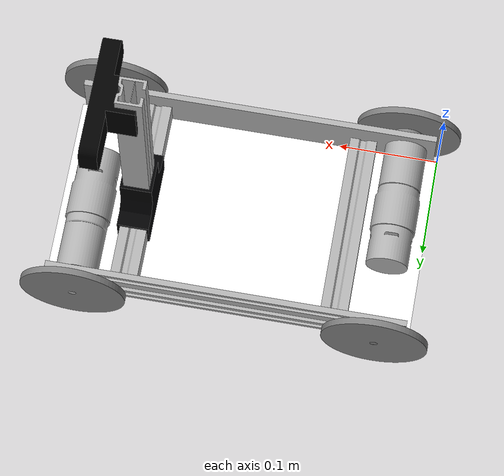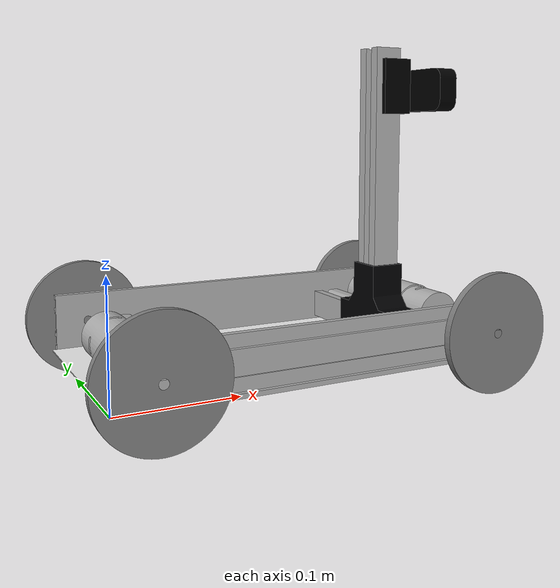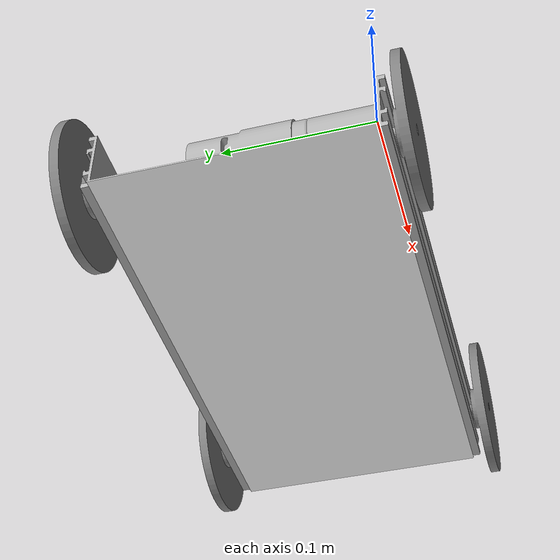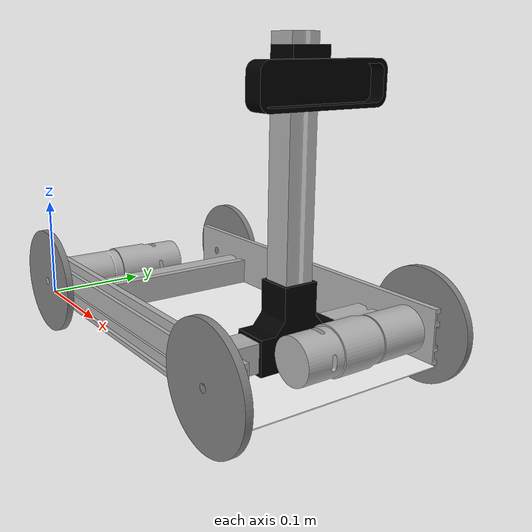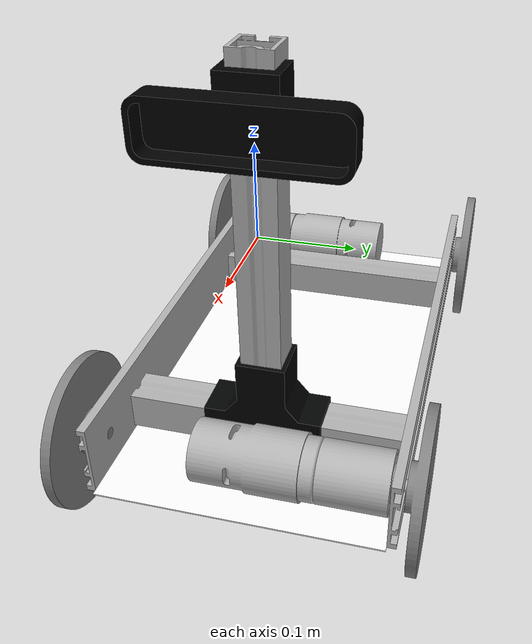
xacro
<?xml version="1.0" ?>
<robot name="ugv_chasis_simply" xmlns:xacro="http://www.ros.org/wiki/xacro">

<xacro:include filename="$(find ugv_chasis_simply_description)/urdf/materials.xacro" />
<xacro:include filename="$(find ugv_chasis_simply_description)/urdf/ugv_chasis_simply.trans" />
<xacro:include filename="$(find ugv_chasis_simply_description)/urdf/ugv_chasis_simply.gazebo" />

<xacro:property name="h" value="0.0" />

<link name="base_link">
  <inertial>
    <origin xyz="0.183 0.0955 0.0005" rpy="0 0 0"/>
    <mass value="0.54037338"/>
    <inertia ixx="0.001643" iyy="0.006032" izz="0.007675" ixy="-0.0" iyz="0.0" ixz="-0.0"/>
  </inertial>
  <visual>
    <origin xyz="0 0 ${h}" rpy="0 0 0"/>
    <geometry>
      <mesh filename="package://ugv_chasis_simply_description/meshes/base_link.stl" scale="0.001 0.001 0.001"/>
    </geometry>
    <material name="base_color"/>
  </visual>
  <collision>
    <origin xyz="0 0 ${h}" rpy="0 0 0"/>
    <geometry>
      <mesh filename="package://ugv_chasis_simply_description/meshes/base_link.stl" scale="0.001 0.001 0.001"/>
    </geometry>
  </collision>
</link>

<link name="aluminum_section_2_1_1">
  <inertial>
    <origin xyz="-0.18274999999999997 -0.002209463183999669 0.02517559613634509" rpy="0 0 0"/>
    <mass value="0.15936247278945964"/>
    <inertia ixx="4.2e-05" iyy="0.001742" izz="0.001701" ixy="0.0" iyz="-0.0" ixz="0.0"/>
  </inertial>
  <visual>
    <origin xyz="-0.366 -0.0 ${h}" rpy="0 0 0"/>
    <geometry>
      <mesh filename="package://ugv_chasis_simply_description/meshes/aluminum_section_2_1_1.stl" scale="0.001 0.001 0.001"/>
    </geometry>
    <material name="silver"/>
  </visual>
  <collision>
    <origin xyz="-0.366 -0.0 ${h}" rpy="0 0 0"/>
    <geometry>
      <mesh filename="package://ugv_chasis_simply_description/meshes/aluminum_section_2_1_1.stl" scale="0.001 0.001 0.001"/>
    </geometry>
  </collision>
</link>

<link name="aluminum_section_2_2_1">
  <inertial>
    <origin xyz="-0.18274999999999997 0.002209463184005056 0.02517559613634509" rpy="0 0 0"/>
    <mass value="0.15936247278945964"/>
    <inertia ixx="4.2e-05" iyy="0.001742" izz="0.001701" ixy="0.0" iyz="0.0" ixz="-0.0"/>
  </inertial>
  <visual>
    <origin xyz="-0.366 -0.191 ${h}" rpy="0 0 0"/>
    <geometry>
      <mesh filename="package://ugv_chasis_simply_description/meshes/aluminum_section_2_2_1.stl" scale="0.001 0.001 0.001"/>
    </geometry>
    <material name="silver"/>
  </visual>
  <collision>
    <origin xyz="-0.366 -0.191 ${h}" rpy="0 0 0"/>
    <geometry>
      <mesh filename="package://ugv_chasis_simply_description/meshes/aluminum_section_2_2_1.stl" scale="0.001 0.001 0.001"/>
    </geometry>
  </collision>
</link>

<link name="short_aluminum_section_1_1_1">
  <inertial>
    <origin xyz="0.0764761996477037 -7.216449660063518e-16 0.01368904867970494" rpy="0 0 0"/>
    <mass value="0.1312466780255859"/>
    <inertia ixx="0.000409" iyy="2.3e-05" izz="0.000412" ixy="-0.0" iyz="0.0" ixz="-0.0"/>
  </inertial>
  <visual>
    <origin xyz="-0.0 -0.0955 ${h-0.001}" rpy="0 0 0"/>
    <geometry>
      <mesh filename="package://ugv_chasis_simply_description/meshes/short_aluminum_section_1_1_1.stl" scale="0.001 0.001 0.001"/>
    </geometry>
    <material name="silver"/>
  </visual>
  <collision>
    <origin xyz="-0.0 -0.0955 ${h-0.001}" rpy="0 0 0"/>
    <geometry>
      <mesh filename="package://ugv_chasis_simply_description/meshes/short_aluminum_section_1_1_1.stl" scale="0.001 0.001 0.001"/>
    </geometry>
  </collision>
</link>

<link name="camera_base_support_1">
  <inertial>
    <origin xyz="-0.07899999999999996 -2.7755575615628914e-17 0.02874832008249895" rpy="0 0 0"/>
    <mass value="0.35396827499999983"/>
    <inertia ixx="0.00029" iyy="0.000194" izz="0.000194" ixy="0.0" iyz="0.0" ixz="-0.0"/>
  </inertial>
  <visual>
    <origin xyz="-0.366 -0.0955 ${h-0.001}" rpy="0 0 0"/>
    <geometry>
      <mesh filename="package://ugv_chasis_simply_description/meshes/camera_base_support_1.stl" scale="0.001 0.001 0.001"/>
    </geometry>
    <material name="camera_base_color"/>
  </visual>
  <collision>
    <origin xyz="-0.366 -0.0955 ${h-0.001}" rpy="0 0 0"/>
    <geometry>
      <mesh filename="package://ugv_chasis_simply_description/meshes/camera_base_support_1.stl" scale="0.001 0.001 0.001"/>
    </geometry>
  </collision>
</link>

<link name="short_aluminum_section_1_2_1">
  <inertial>
    <origin xyz="-0.013523800352296167 2.3592239273284576e-16 0.013689048679704965" rpy="0 0 0"/>
    <mass value="0.1312466780255859"/>
    <inertia ixx="0.000409" iyy="2.3e-05" izz="0.000412" ixy="-0.0" iyz="0.0" ixz="0.0"/>
  </inertial>
  <visual>
    <origin xyz="-0.3 -0.0955 ${h-0.004}" rpy="0 0 0"/>
    <geometry>
      <mesh filename="package://ugv_chasis_simply_description/meshes/short_aluminum_section_1_2_1.stl" scale="0.001 0.001 0.001"/>
    </geometry>
    <material name="silver"/>
  </visual>
  <collision>
    <origin xyz="-0.3 -0.0955 ${h-0.004}" rpy="0 0 0"/>
    <geometry>
      <mesh filename="package://ugv_chasis_simply_description/meshes/short_aluminum_section_1_2_1.stl" scale="0.001 0.001 0.001"/>
    </geometry>
  </collision>
</link>

<link name="aluminum_section_1_1">
  <inertial>
    <origin xyz="0.013689048679703442 -0.01352380035229618 0.12000000000000033" rpy="0 0 0"/>
    <mass value="0.1649172917598984"/>
    <inertia ixx="0.000808" iyy="0.000805" izz="2.9e-05" ixy="0.0" iyz="0.0" ixz="0.0"/>
  </inertial>
  <visual>
    <origin xyz="-0.274 -0.109 ${h-0.03325}" rpy="0 0 0"/>
    <geometry>
      <mesh filename="package://ugv_chasis_simply_description/meshes/aluminum_section_1_1.stl" scale="0.001 0.001 0.001"/>
    </geometry>
    <material name="silver"/>
  </visual>
  <collision>
    <origin xyz="-0.274 -0.109 ${h-0.03325}" rpy="0 0 0"/>
    <geometry>
      <mesh filename="package://ugv_chasis_simply_description/meshes/aluminum_section_1_1.stl" scale="0.001 0.001 0.001"/>
    </geometry>
  </collision>
</link>

<link name="camera_base_1">
  <inertial>
    <origin xyz="-0.23998580179449036 -0.09559200000000008 0.2627440506049653" rpy="0 0 0"/>
    <mass value="0.09052999054354093"/>
    <inertia ixx="9.8e-05" iyy="2.6e-05" izz="9e-05" ixy="0.0" iyz="0.0" ixz="1e-06"/>
  </inertial>
  <visual>
    <origin xyz="-0.54725 -0.190952 ${h+0.0267}" rpy="0 0 0"/>
    <geometry>
      <mesh filename="package://ugv_chasis_simply_description/meshes/camera_base_1.stl" scale="0.001 0.001 0.001"/>
    </geometry>
    <material name="black"/>
  </visual>
  <collision>
    <origin xyz="-0.54725 -0.190952 ${h+0.0267}" rpy="0 0 0"/>
    <geometry>
      <mesh filename="package://ugv_chasis_simply_description/meshes/camera_base_1.stl" scale="0.001 0.001 0.001"/>
    </geometry>
  </collision>
</link>

<link name="motor_IG42_1_1">
  <inertial>
    <origin xyz="8.859946714567801e-06 0.060305169982188725 4.9417748785154925e-05" rpy="0 0 0"/>
    <mass value="0.7180730609944159"/>
    <inertia ixx="0.000916" iyy="0.000163" izz="0.000917" ixy="-0.0" iyz="-1e-06" ixz="0.0"/>
  </inertial>
  <visual>
    <origin xyz="-0.033 -0.0 ${h-0.025}" rpy="0 0 0"/>
    <geometry>
      <mesh filename="package://ugv_chasis_simply_description/meshes/motor_IG42_1_1.stl" scale="0.001 0.001 0.001"/>
    </geometry>
    <material name="silver"/>
  </visual>
  <collision>
    <origin xyz="-0.033 -0.0 ${h-0.025}" rpy="0 0 0"/>
    <geometry>
      <mesh filename="package://ugv_chasis_simply_description/meshes/motor_IG42_1_1.stl" scale="0.001 0.001 0.001"/>
    </geometry>
  </collision>
</link>

<link name="motor_IG42_2_1">
  <inertial>
    <origin xyz="-8.85994671401269e-06 -0.060305169982187934 4.9417748785154925e-05" rpy="0 0 0"/>
    <mass value="0.7180730609944159"/>
    <inertia ixx="0.000916" iyy="0.000163" izz="0.000917" ixy="-0.0" iyz="1e-06" ixz="-0.0"/>
  </inertial>
  <visual>
    <origin xyz="-0.3335 -0.191 ${h-0.025}" rpy="0 0 0"/>
    <geometry>
      <mesh filename="package://ugv_chasis_simply_description/meshes/motor_IG42_2_1.stl" scale="0.001 0.001 0.001"/>
    </geometry>
    <material name="silver"/>
  </visual>
  <collision>
    <origin xyz="-0.3335 -0.191 ${h-0.025}" rpy="0 0 0"/>
    <geometry>
      <mesh filename="package://ugv_chasis_simply_description/meshes/motor_IG42_2_1.stl" scale="0.001 0.001 0.001"/>
    </geometry>
  </collision>
</link>

<link name="sprocket_1_1">
  <inertial>
    <origin xyz="-8.410633300925952e-14 0.0037377569389918895 -2.8587202050012195e-13" rpy="0 0 0"/>
    <mass value="0.481551579854151"/>
    <inertia ixx="0.000317" iyy="0.000628" izz="0.000317" ixy="0.0" iyz="-0.0" ixz="0.0"/>
  </inertial>
  <visual>
    <origin xyz="-0.033 0.02 ${h-0.025}" rpy="0 0 0"/>
    <geometry>
      <mesh filename="package://ugv_chasis_simply_description/meshes/sprocket_1_1.stl" scale="0.001 0.001 0.001"/>
    </geometry>
    <material name="sprocket_color"/>
  </visual>
  <collision>
    <origin xyz="-0.033 0.02 ${h-0.025}" rpy="0 0 0"/>
    <geometry>
      <mesh filename="package://ugv_chasis_simply_description/meshes/sprocket_1_1.stl" scale="0.001 0.001 0.001"/>
    </geometry>
  </collision>
</link>

<link name="sprocket_2_1">
  <inertial>
    <origin xyz="8.37108160567368e-14 -0.003737756938991199 -2.8593793999220907e-13" rpy="0 0 0"/>
    <mass value="0.481551579854151"/>
    <inertia ixx="0.000317" iyy="0.000628" izz="0.000317" ixy="0.0" iyz="0.0" ixz="0.0"/>
  </inertial>
  <visual>
    <origin xyz="-0.3335 -0.211 ${h-0.025}" rpy="0 0 0"/>
    <geometry>
      <mesh filename="package://ugv_chasis_simply_description/meshes/sprocket_2_1.stl" scale="0.001 0.001 0.001"/>
    </geometry>
    <material name="sprocket_color"/>
  </visual>
  <collision>
    <origin xyz="-0.3335 -0.211 ${h-0.025}" rpy="0 0 0"/>
    <geometry>
      <mesh filename="package://ugv_chasis_simply_description/meshes/sprocket_2_1.stl" scale="0.001 0.001 0.001"/>
    </geometry>
  </collision>
</link>

<link name="idle_sprocket_bolt_1_1">
  <inertial>
    <origin xyz="2.1860291354869332e-13 -0.009819013088001345 -0.00015404798171953643" rpy="0 0 0"/>
    <mass value="0.007550065008020204"/>
    <inertia ixx="0.0" iyy="0.0" izz="0.0" ixy="-0.0" iyz="-0.0" ixz="-0.0"/>
  </inertial>
  <visual>
    <origin xyz="-0.3335 -0.0 ${h-0.025}" rpy="0 0 0"/>
    <geometry>
      <mesh filename="package://ugv_chasis_simply_description/meshes/idle_sprocket_bolt_1_1.stl" scale="0.001 0.001 0.001"/>
    </geometry>
    <material name="sprocket_color"/>
  </visual>
  <collision>
    <origin xyz="-0.3335 -0.0 ${h-0.025}" rpy="0 0 0"/>
    <geometry>
      <mesh filename="package://ugv_chasis_simply_description/meshes/idle_sprocket_bolt_1_1.stl" scale="0.001 0.001 0.001"/>
    </geometry>
  </collision>
</link>

<link name="idle_sprocket_bolt_2_1">
  <inertial>
    <origin xyz="2.1908169722806292e-13 0.009819013088011141 0.0001540479817195295" rpy="0 0 0"/>
    <mass value="0.007550065008020204"/>
    <inertia ixx="0.0" iyy="0.0" izz="0.0" ixy="0.0" iyz="-0.0" ixz="0.0"/>
  </inertial>
  <visual>
    <origin xyz="-0.033 -0.191 ${h-0.025}" rpy="0 0 0"/>
    <geometry>
      <mesh filename="package://ugv_chasis_simply_description/meshes/idle_sprocket_bolt_2_1.stl" scale="0.001 0.001 0.001"/>
    </geometry>
    <material name="sprocket_color"/>
  </visual>
  <collision>
    <origin xyz="-0.033 -0.191 ${h-0.025}" rpy="0 0 0"/>
    <geometry>
      <mesh filename="package://ugv_chasis_simply_description/meshes/idle_sprocket_bolt_2_1.stl" scale="0.001 0.001 0.001"/>
    </geometry>
  </collision>
</link>

<link name="sprocket_3_1">
  <inertial>
    <origin xyz="2.8582691768974655e-13 0.0037377569389918618 -8.40924552214517e-14" rpy="0 0 0"/>
    <mass value="0.481551579854151"/>
    <inertia ixx="0.000317" iyy="0.000628" izz="0.000317" ixy="0.0" iyz="0.0" ixz="-0.0"/>
  </inertial>
  <visual>
    <origin xyz="-0.3335 0.02 ${h-0.025}" rpy="0 0 0"/>
    <geometry>
      <mesh filename="package://ugv_chasis_simply_description/meshes/sprocket_3_1.stl" scale="0.001 0.001 0.001"/>
    </geometry>
    <material name="sprocket_color"/>
  </visual>
  <collision>
    <origin xyz="-0.3335 0.02 ${h-0.025}" rpy="0 0 0"/>
    <geometry>
      <mesh filename="package://ugv_chasis_simply_description/meshes/sprocket_3_1.stl" scale="0.001 0.001 0.001"/>
    </geometry>
  </collision>
</link>

<link name="sprocket_4_1">
  <inertial>
    <origin xyz="-8.321815458955939e-14 -0.0037377569389820398 2.856499758951969e-13" rpy="0 0 0"/>
    <mass value="0.481551579854151"/>
    <inertia ixx="0.000317" iyy="0.000628" izz="0.000317" ixy="0.0" iyz="-0.0" ixz="-0.0"/>
  </inertial>
  <visual>
    <origin xyz="-0.033 -0.211 ${h-0.025}" rpy="0 0 0"/>
    <geometry>
      <mesh filename="package://ugv_chasis_simply_description/meshes/sprocket_4_1.stl" scale="0.001 0.001 0.001"/>
    </geometry>
    <material name="sprocket_color"/>
  </visual>
  <collision>
    <origin xyz="-0.033 -0.211 ${h-0.025}" rpy="0 0 0"/>
    <geometry>
      <mesh filename="package://ugv_chasis_simply_description/meshes/sprocket_4_1.stl" scale="0.001 0.001 0.001"/>
    </geometry>
  </collision>
</link>

<joint name="Rigid3" type="fixed">
  <origin xyz="0.366 0.0 0.0" rpy="0 0 0"/>
  <parent link="base_link"/>
  <child link="aluminum_section_2_1_1"/>
</joint>

<joint name="Rigid4" type="fixed">
  <origin xyz="0.366 0.191 0.0" rpy="0 0 0"/>
  <parent link="base_link"/>
  <child link="aluminum_section_2_2_1"/>
</joint>

<joint name="Rigid5" type="fixed">
  <origin xyz="0.0 0.0955 0.001" rpy="0 0 0"/>
  <parent link="base_link"/>
  <child link="short_aluminum_section_1_1_1"/>
</joint>

<joint name="Rigid6" type="fixed">
  <origin xyz="0.366 0.0955 0.001" rpy="0 0 0"/>
  <parent link="base_link"/>
  <child link="camera_base_support_1"/>
</joint>

<joint name="Rigid7" type="fixed">
  <origin xyz="-0.066 0.0 0.003" rpy="0 0 0"/>
  <parent link="camera_base_support_1"/>
  <child link="short_aluminum_section_1_2_1"/>
</joint>

<joint name="Rigid8" type="fixed">
  <origin xyz="-0.092 0.0135 0.03225" rpy="0 0 0"/>
  <parent link="camera_base_support_1"/>
  <child link="aluminum_section_1_1"/>
</joint>

<joint name="Rigid9" type="fixed">
  <origin xyz="0.27325 0.081952 -0.05995" rpy="0 0 0"/>
  <parent link="aluminum_section_1_1"/>
  <child link="camera_base_1"/>
</joint>

<joint name="Rigid10" type="fixed">
  <origin xyz="-0.333 0.0 0.025" rpy="0 0 0"/>
  <parent link="aluminum_section_2_1_1"/>
  <child link="motor_IG42_1_1"/>
</joint>

<joint name="Rigid11" type="fixed">
  <origin xyz="-0.0325 0.0 0.025" rpy="0 0 0"/>
  <parent link="aluminum_section_2_2_1"/>
  <child link="motor_IG42_2_1"/>
</joint>

<joint name="Rev12" type="continuous">
  <origin xyz="0.0 -0.02 0.0" rpy="0 0 0"/>
  <parent link="motor_IG42_1_1"/>
  <child link="sprocket_1_1"/>
  <axis xyz="0.0 1.0 0.0"/>
</joint>

<joint name="Rev13" type="continuous">
  <origin xyz="0.0 0.02 0.0" rpy="0 0 0"/>
  <parent link="motor_IG42_2_1"/>
  <child link="sprocket_2_1"/>
  <axis xyz="0.0 1.0 0.0"/>
</joint>

<joint name="Rigid14" type="fixed">
  <origin xyz="-0.0325 0.0 0.025" rpy="0 0 0"/>
  <parent link="aluminum_section_2_1_1"/>
  <child link="idle_sprocket_bolt_1_1"/>
</joint>

<joint name="Rigid15" type="fixed">
  <origin xyz="-0.333 0.0 0.025" rpy="0 0 0"/>
  <parent link="aluminum_section_2_2_1"/>
  <child link="idle_sprocket_bolt_2_1"/>
</joint>

<joint name="Rev16" type="continuous">
  <origin xyz="0.0 -0.02 0.0" rpy="0 0 0"/>
  <parent link="idle_sprocket_bolt_1_1"/>
  <child link="sprocket_3_1"/>
  <axis xyz="0.0 1.0 0.0"/>
</joint>

<joint name="Rev17" type="continuous">
  <origin xyz="0.0 0.02 0.0" rpy="0 0 0"/>
  <parent link="idle_sprocket_bolt_2_1"/>
  <child link="sprocket_4_1"/>
  <axis xyz="0.0 1.0 0.0"/>
</joint>

</robot>

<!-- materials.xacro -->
<robot name="ugv_chasis_simply" xmlns:xacro="http://www.ros.org/wiki/xacro" >

<material name="silver">
  <color rgba="0.700 0.700 0.700 1.000"/>
</material>

<material name="camera_base_color">
  <color rgba="0.62 0.83 1.61 1.0"/>
</material>

<material name="black">
  <color rgba="0.0 0.0 0.0 1.0"/>
</material>

<material name="sprocket_color">
  <color rgba="0.51 0.51 0.51 1.0"/>
</material>

<material name="base_color">
  <color rgba="1.0 1.0 1.0 1.0"/>
</material>

</robot>

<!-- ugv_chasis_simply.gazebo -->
<robot name="ugv_chasis_simply" xmlns:xacro="http://www.ros.org/wiki/xacro" >

<xacro:property name="body_color" value="Gazebo/Silver" />

<gazebo>
  <plugin name="control" filename="libgazebo_ros_control.so"/>
</gazebo>
<gazebo reference="base_link">
  <material>${body_color}</material>
  <mu1>0.2</mu1>
  <mu2>0.2</mu2>
  <selfCollide>true</selfCollide>
  <gravity>true</gravity>
</gazebo>

<gazebo reference="aluminum_section_2_1_1">
  <material>${body_color}</material>
  <mu1>0.2</mu1>
  <mu2>0.2</mu2>
  <selfCollide>true</selfCollide>
</gazebo>

<gazebo reference="aluminum_section_2_2_1">
  <material>${body_color}</material>
  <mu1>0.2</mu1>
  <mu2>0.2</mu2>
  <selfCollide>true</selfCollide>
</gazebo>

<gazebo reference="short_aluminum_section_1_1_1">
  <material>${body_color}</material>
  <mu1>0.2</mu1>
  <mu2>0.2</mu2>
  <selfCollide>true</selfCollide>
</gazebo>

<gazebo reference="camera_base_support_1">
  <material>${body_color}</material>
  <mu1>0.2</mu1>
  <mu2>0.2</mu2>
  <selfCollide>true</selfCollide>
</gazebo>

<gazebo reference="short_aluminum_section_1_2_1">
  <material>${body_color}</material>
  <mu1>0.2</mu1>
  <mu2>0.2</mu2>
  <selfCollide>true</selfCollide>
</gazebo>

<gazebo reference="aluminum_section_1_1">
  <material>${body_color}</material>
  <mu1>0.2</mu1>
  <mu2>0.2</mu2>
  <selfCollide>true</selfCollide>
</gazebo>

<gazebo reference="camera_base_1">
  <material>${body_color}</material>
  <mu1>0.2</mu1>
  <mu2>0.2</mu2>
  <selfCollide>true</selfCollide>
</gazebo>

<gazebo reference="motor_IG42_1_1">
  <material>${body_color}</material>
  <mu1>0.2</mu1>
  <mu2>0.2</mu2>
  <selfCollide>true</selfCollide>
</gazebo>

<gazebo reference="motor_IG42_2_1">
  <material>${body_color}</material>
  <mu1>0.2</mu1>
  <mu2>0.2</mu2>
  <selfCollide>true</selfCollide>
</gazebo>

<gazebo reference="sprocket_1_1">
  <material>${body_color}</material>
  <mu1>200</mu1>
  <mu2>100</mu2>
  <kp>10000000.0</kp>
  <kd>1.0</kd>
  <selfCollide>true</selfCollide>
</gazebo>

<gazebo reference="sprocket_2_1">
  <material>${body_color}</material>
  <mu1>200</mu1>
  <mu2>100</mu2>
  <kp>10000000.0</kp>
  <kd>1.0</kd>
  <selfCollide>true</selfCollide>
</gazebo>

<gazebo reference="idle_sprocket_bolt_1_1">
  <material>${body_color}</material>
  <mu1>0.2</mu1>
  <mu2>0.2</mu2>
  <selfCollide>true</selfCollide>
</gazebo>

<gazebo reference="idle_sprocket_bolt_2_1">
  <material>${body_color}</material>
  <mu1>0.2</mu1>
  <mu2>0.2</mu2>
  <selfCollide>true</selfCollide>
</gazebo>

<gazebo reference="sprocket_3_1">
  <material>${body_color}</material>
  <mu1>200</mu1>
  <mu2>100</mu2>
  <kp>10000000.0</kp>
  <kd>1.0</kd>
  <selfCollide>true</selfCollide>
</gazebo>

<gazebo reference="sprocket_4_1">
  <material>${body_color}</material>
  <mu1>200</mu1>
  <mu2>100</mu2>
  <kp>10000000.0</kp>
  <kd>1.0</kd>
  <selfCollide>true</selfCollide>
</gazebo>

<gazebo>
  <plugin name="skid_steer_drive_controller" filename="libgazebo_ros_skid_steer_drive.so">
    <updateRate>100.0</updateRate>
    <robotNamespace>/</robotNamespace>
    <leftFrontJoint>Rev13</leftFrontJoint>
    <rightFrontJoint>Rev16</rightFrontJoint>
    <leftRearJoint>Rev17</leftRearJoint>
    <rightRearJoint>Rev12</rightRearJoint>
    <wheelSeparation>0.22445</wheelSeparation>
    <wheelDiameter>0.1054</wheelDiameter>
    <robotBaseFrame>base_link</robotBaseFrame>
    <torque>50</torque>
    <topicName>cmd_vel</topicName>
    <broadcastTF>false</broadcastTF>
  </plugin>
</gazebo>

</robot>
